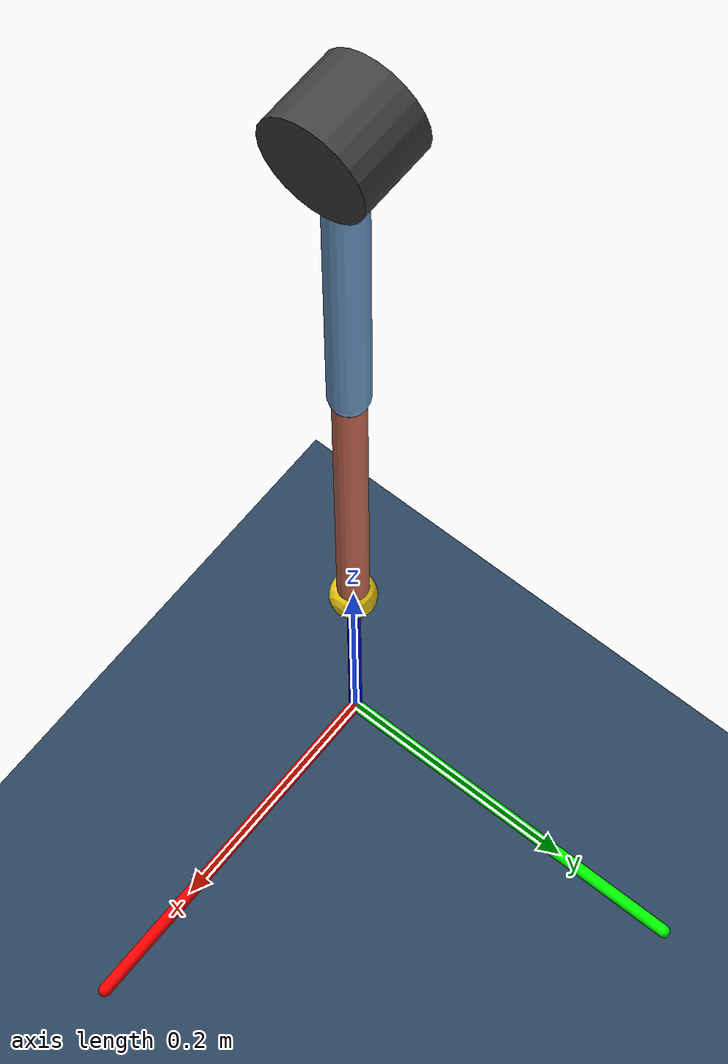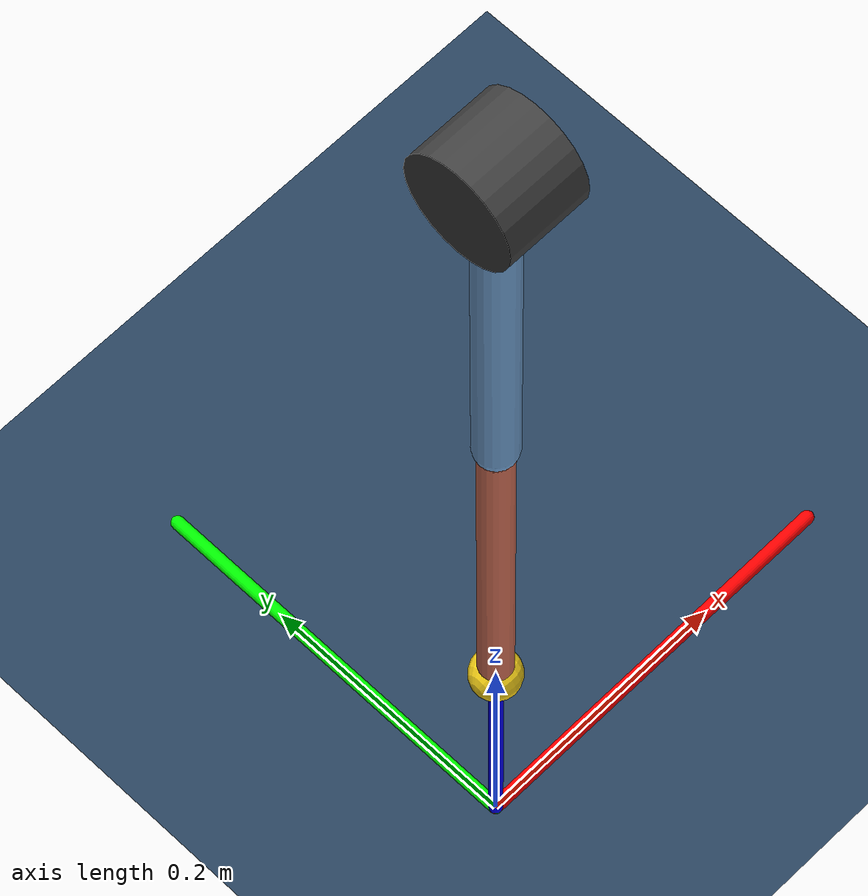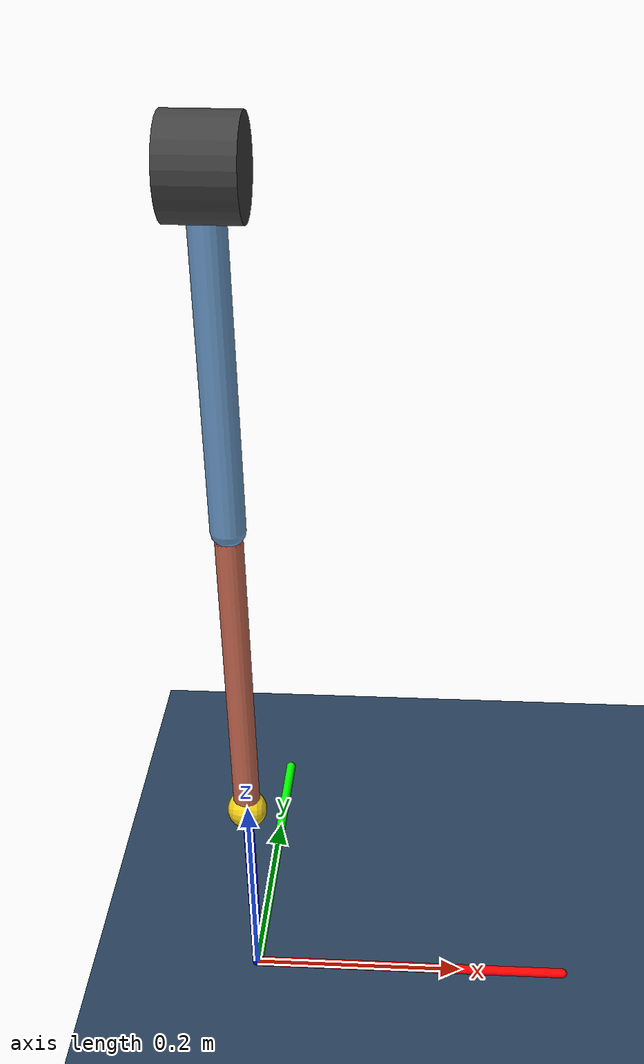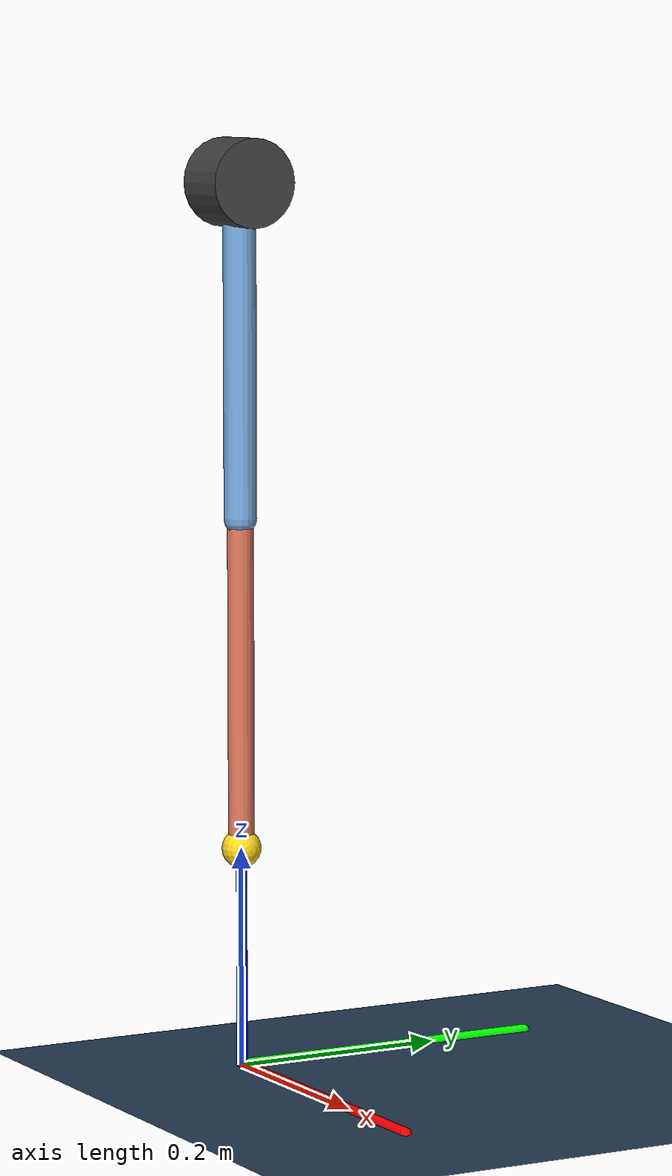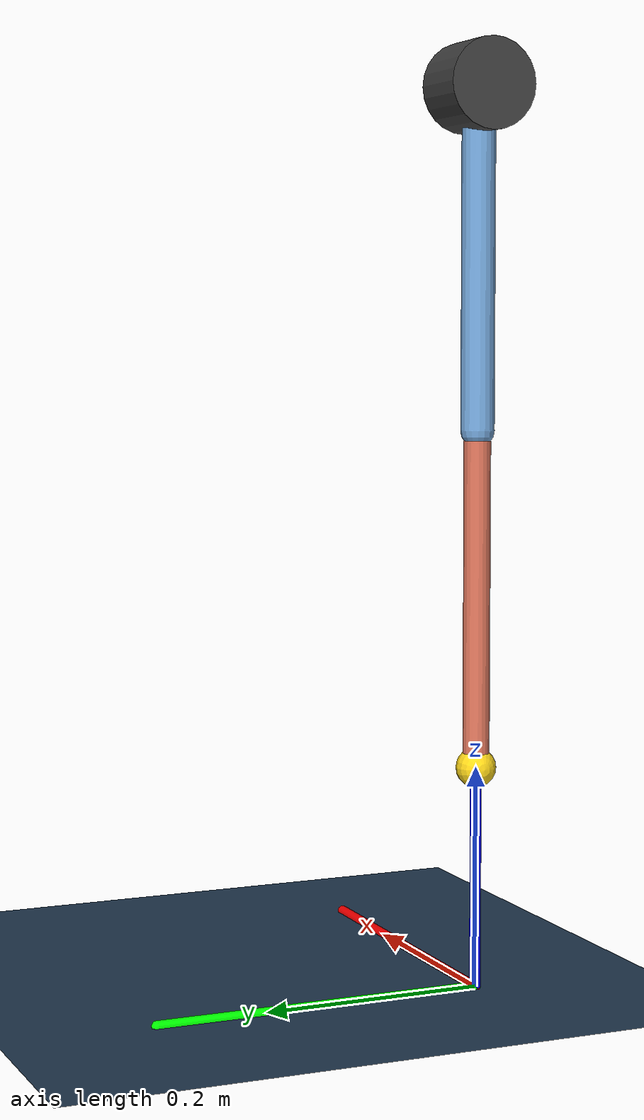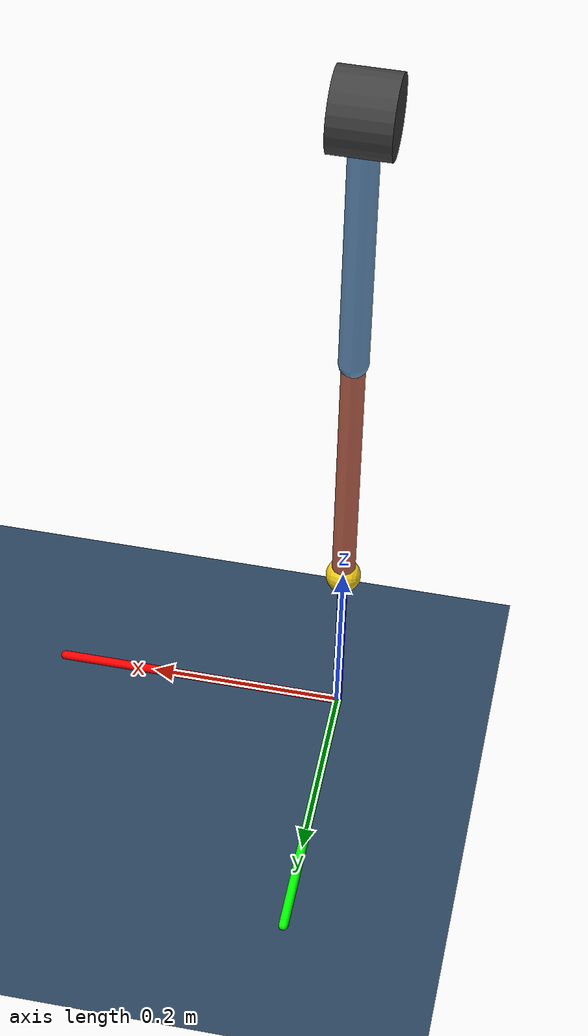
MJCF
<mujoco model="dp_scene">

  <statistic center="0.3 0 0.5" extent="1.5"/>

  <option timestep="0.001" gravity="0 0 -9.81" integrator="RK4"/>

  <visual>
    <global offwidth="1280" offheight="960" azimuth="140" elevation="-25"/>
    <headlight diffuse="0.6 0.6 0.6" ambient="0.3 0.3 0.3" specular="0 0 0"/>
    <rgba haze="0.15 0.25 0.35 1"/>
  </visual>

  <asset>
    <texture type="skybox" builtin="gradient"
             rgb1="0.3 0.5 0.7" rgb2="0 0 0"
             width="512" height="3072"/>
    <texture type="2d" name="groundplane" builtin="checker" mark="edge"
             rgb1="0.2 0.3 0.4" rgb2="0.1 0.2 0.3" markrgb="0.8 0.8 0.8"
             width="300" height="300"/>
    <material name="groundplane" texture="groundplane" texuniform="true"
              texrepeat="5 5" reflectance="0.2"/>
  </asset>

  <default>
    <joint damping="0.005" armature="0.002" frictionloss="0.001"/>
    <geom contype="0" conaffinity="0"/>
  </default>

  <worldbody>
    <light pos="0 0 2.5" dir="0 0 -1" directional="true"/>
    <geom name="floor" size="0 0 0.05" type="plane" material="groundplane"/>

    <!-- Base element -->
    <body name="base" pos="0 0 0.8" euler="0 90 0">
      <geom name="mount" type="cylinder" size="0.04 0.03" rgba="0.25 0.25 0.25 1" mass="0.0"/>

      <!-- first link -->
      <body name="link1" pos="0 0 0">
        <joint name="joint1" type="hinge" axis="0 0 1" pos="0 0 0"/>
        <geom name="link1_rod" type="capsule" fromto="0.01 0 0  0.30 0 0" size="0.015" mass="0.50" rgba="0.45 0.65 0.85 1"/>
        <inertial pos="0.15 0 0" mass="0.50" diaginertia="0.00010 0.00385 0.00385"/>

        <!-- second link -->
        <body name="link2" pos="0.30 0 0">
          <joint name="joint2" type="hinge" axis="0 0 1" pos="0 0 0"/>
          <geom name="link2_rod" type="capsule" fromto="0.01 0 0  0.30 0 0" size="0.012" mass="0.30" rgba="0.85 0.45 0.35 1"/>
          <inertial pos="0.15 0 0" mass="0.30" diaginertia="0.00006 0.00231 0.00231"/>
          <geom name="tip" type="sphere" size="0.018" pos="0.30 0 0" rgba="1.0 0.85 0.1 1" mass="0"/>
        </body>

      </body>
    </body>

    <!-- Debug axes -->
    <geom type="capsule" fromto="0 0 0 0.3 0 0" size="0.005" rgba="1 0 0 1" contype="0" conaffinity="0"/>
    <geom type="capsule" fromto="0 0 0 0 0.3 0" size="0.005" rgba="0 1 0 1" contype="0" conaffinity="0"/>
    <geom type="capsule" fromto="0 0 0 0 0 0.3" size="0.005" rgba="0 0 1 1" contype="0" conaffinity="0"/>

  </worldbody>

  <actuator>
    <motor name="torque1" joint="joint1" gear="1" ctrllimited="false"/>
  </actuator>

  <sensor>
    <jointpos name="q1"  joint="joint1"/>
    <jointpos name="q2"  joint="joint2"/>
    <jointvel name="dq1" joint="joint1"/>
    <jointvel name="dq2" joint="joint2"/>
  </sensor>

</mujoco>
